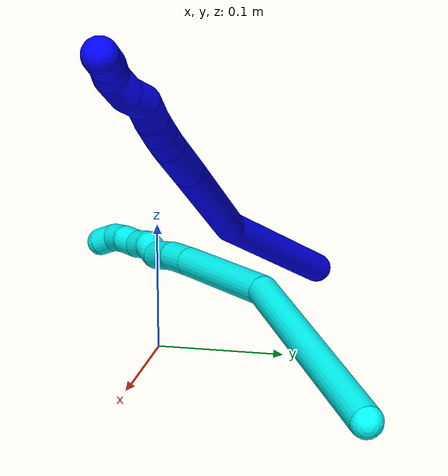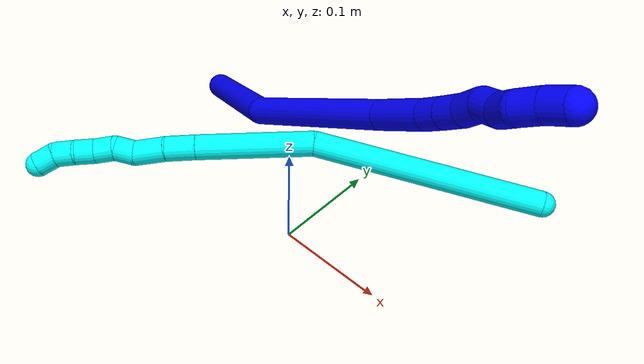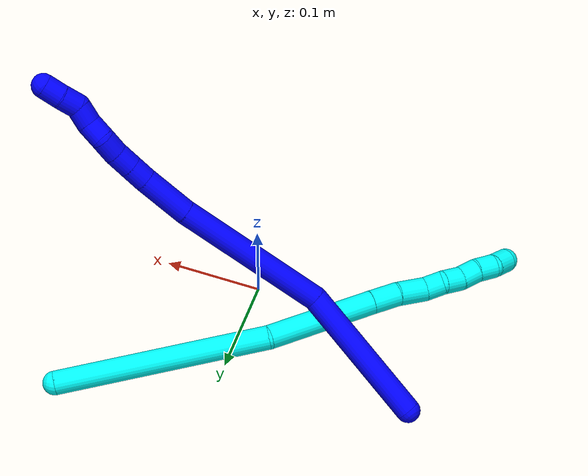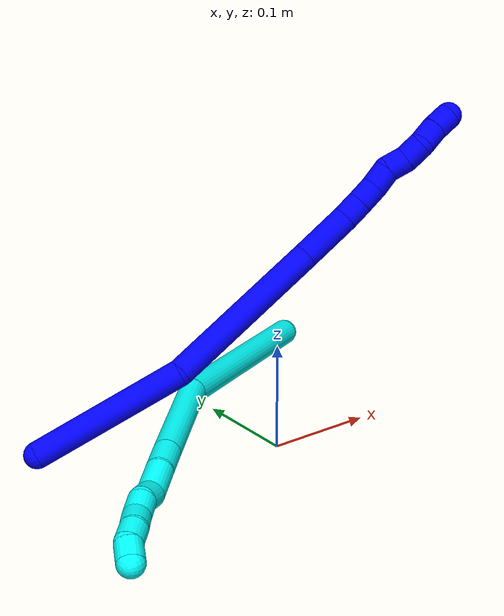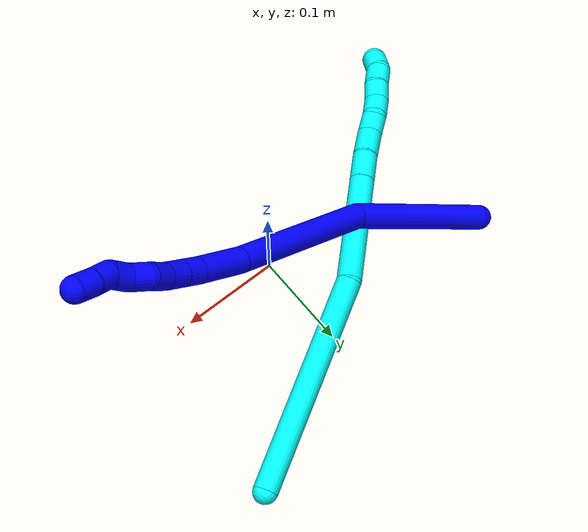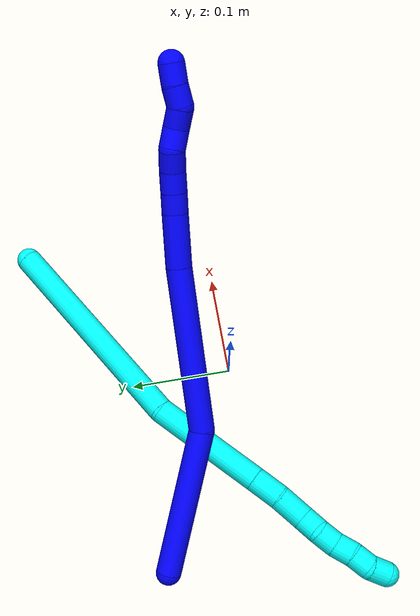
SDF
<sdf version="1.7">
 <world name="default">
  <model name="1">
   <static>0</static>
   <link name="1">
    <collision name="collision-cylinder-e_1_1_4">
     <pose>0.018158 0.00442 -0.071099 -3.0795 0.249581 -2.65622</pose>
     <geometry><cylinder><radius>0.0125</radius><length>0.147027</length></cylinder></geometry>
     <surface>
      <friction><ode><mu>1.16</mu><mu2>1.16</mu2><slip1>0</slip1><slip2>0</slip2></ode></friction>
      <contact><ode><kp>1e+06</kp><kd>1</kd><max_vel>0</max_vel><min_depth>0.001</min_depth></ode></contact>
     </surface>
    </collision>
    <visual name="visual-cylinder-e_1_1_4">
     <pose>0.018158 0.00442 -0.071099 -3.0795 0.249581 -2.65622</pose>
     <geometry><cylinder><radius>0.0125</radius><length>0.147027</length></cylinder></geometry>
     <material><ambient>0 0 1 1</ambient></material>
    </visual>
    <collision name="collision-cylinder-e_2_4_5">
     <pose>0.070811 0.035906 -0.209322 -2.75832 0.44477 -1.72334</pose>
     <geometry><cylinder><radius>0.0125</radius><length>0.160352</length></cylinder></geometry>
     <surface>
      <friction><ode><mu>1.16</mu><mu2>1.16</mu2><slip1>0</slip1><slip2>0</slip2></ode></friction>
      <contact><ode><kp>1e+06</kp><kd>1</kd><max_vel>0</max_vel><min_depth>0.001</min_depth></ode></contact>
     </surface>
    </collision>
    <visual name="visual-cylinder-e_2_4_5">
     <pose>0.070811 0.035906 -0.209322 -2.75832 0.44477 -1.72334</pose>
     <geometry><cylinder><radius>0.0125</radius><length>0.160352</length></cylinder></geometry>
     <material><ambient>0 0 1 1</ambient></material>
    </visual>
    <collision name="collision-cylinder-e_3_5_6">
     <pose>0.116974 0.069454 -0.298623 -2.85721 0.467624 -2.05918</pose>
     <geometry><cylinder><radius>0.0125</radius><length>0.051765</length></cylinder></geometry>
     <surface>
      <friction><ode><mu>1.16</mu><mu2>1.16</mu2><slip1>0</slip1><slip2>0</slip2></ode></friction>
      <contact><ode><kp>1e+06</kp><kd>1</kd><max_vel>0</max_vel><min_depth>0.001</min_depth></ode></contact>
     </surface>
    </collision>
    <visual name="visual-cylinder-e_3_5_6">
     <pose>0.116974 0.069454 -0.298623 -2.85721 0.467624 -2.05918</pose>
     <geometry><cylinder><radius>0.0125</radius><length>0.051765</length></cylinder></geometry>
     <material><ambient>0 0 1 1</ambient></material>
    </visual>
    <collision name="collision-cylinder-e_4_6_7">
     <pose>0.13366 0.077933 -0.32925 -2.90949 0.52403 -2.32148</pose>
     <geometry><cylinder><radius>0.0125</radius><length>0.02006</length></cylinder></geometry>
     <surface>
      <friction><ode><mu>1.16</mu><mu2>1.16</mu2><slip1>0</slip1><slip2>0</slip2></ode></friction>
      <contact><ode><kp>1e+06</kp><kd>1</kd><max_vel>0</max_vel><min_depth>0.001</min_depth></ode></contact>
     </surface>
    </collision>
    <visual name="visual-cylinder-e_4_6_7">
     <pose>0.13366 0.077933 -0.32925 -2.90949 0.52403 -2.32148</pose>
     <geometry><cylinder><radius>0.0125</radius><length>0.02006</length></cylinder></geometry>
     <material><ambient>0 0 1 1</ambient></material>
    </visual>
    <collision name="collision-cylinder-e_5_7_8">
     <pose>0.143985 0.081951 -0.346217 -2.90873 0.545023 -2.34887</pose>
     <geometry><cylinder><radius>0.0125</radius><length>0.020471</length></cylinder></geometry>
     <surface>
      <friction><ode><mu>1.16</mu><mu2>1.16</mu2><slip1>0</slip1><slip2>0</slip2></ode></friction>
      <contact><ode><kp>1e+06</kp><kd>1</kd><max_vel>0</max_vel><min_depth>0.001</min_depth></ode></contact>
     </surface>
    </collision>
    <visual name="visual-cylinder-e_5_7_8">
     <pose>0.143985 0.081951 -0.346217 -2.90873 0.545023 -2.34887</pose>
     <geometry><cylinder><radius>0.0125</radius><length>0.020471</length></cylinder></geometry>
     <material><ambient>0 0 1 1</ambient></material>
    </visual>
    <collision name="collision-cylinder-e_6_8_9">
     <pose>0.155477 0.084769 -0.362728 -3.04203 0.656064 -2.85087</pose>
     <geometry><cylinder><radius>0.0125</radius><length>0.020281</length></cylinder></geometry>
     <surface>
      <friction><ode><mu>1.16</mu><mu2>1.16</mu2><slip1>0</slip1><slip2>0</slip2></ode></friction>
      <contact><ode><kp>1e+06</kp><kd>1</kd><max_vel>0</max_vel><min_depth>0.001</min_depth></ode></contact>
     </surface>
    </collision>
    <visual name="visual-cylinder-e_6_8_9">
     <pose>0.155477 0.084769 -0.362728 -3.04203 0.656064 -2.85087</pose>
     <geometry><cylinder><radius>0.0125</radius><length>0.020281</length></cylinder></geometry>
     <material><ambient>0 0 1 1</ambient></material>
    </visual>
    <collision name="collision-cylinder-e_7_9_10">
     <pose>0.163961 0.08657 -0.380411 -3.03847 0.231802 -2.30714</pose>
     <geometry><cylinder><radius>0.0125</radius><length>0.020012</length></cylinder></geometry>
     <surface>
      <friction><ode><mu>1.16</mu><mu2>1.16</mu2><slip1>0</slip1><slip2>0</slip2></ode></friction>
      <contact><ode><kp>1e+06</kp><kd>1</kd><max_vel>0</max_vel><min_depth>0.001</min_depth></ode></contact>
     </surface>
    </collision>
    <visual name="visual-cylinder-e_7_9_10">
     <pose>0.163961 0.08657 -0.380411 -3.03847 0.231802 -2.30714</pose>
     <geometry><cylinder><radius>0.0125</radius><length>0.020012</length></cylinder></geometry>
     <material><ambient>0 0 1 1</ambient></material>
    </visual>
    <collision name="collision-cylinder-e_8_10_11">
     <pose>0.170962 0.08686 -0.398905 3.0609 0.489051 2.82079</pose>
     <geometry><cylinder><radius>0.0125</radius><length>0.02002</length></cylinder></geometry>
     <surface>
      <friction><ode><mu>1.16</mu><mu2>1.16</mu2><slip1>0</slip1><slip2>0</slip2></ode></friction>
      <contact><ode><kp>1e+06</kp><kd>1</kd><max_vel>0</max_vel><min_depth>0.001</min_depth></ode></contact>
     </surface>
    </collision>
    <visual name="visual-cylinder-e_8_10_11">
     <pose>0.170962 0.08686 -0.398905 3.0609 0.489051 2.82079</pose>
     <geometry><cylinder><radius>0.0125</radius><length>0.02002</length></cylinder></geometry>
     <material><ambient>0 0 1 1</ambient></material>
    </visual>
    <collision name="collision-cylinder-e_9_11_12">
     <pose>0.180885 0.090115 -0.415266 -2.65798 0.549087 -1.7032</pose>
     <geometry><cylinder><radius>0.0125</radius><length>0.020002</length></cylinder></geometry>
     <surface>
      <friction><ode><mu>1.16</mu><mu2>1.16</mu2><slip1>0</slip1><slip2>0</slip2></ode></friction>
      <contact><ode><kp>1e+06</kp><kd>1</kd><max_vel>0</max_vel><min_depth>0.001</min_depth></ode></contact>
     </surface>
    </collision>
    <visual name="visual-cylinder-e_9_11_12">
     <pose>0.180885 0.090115 -0.415266 -2.65798 0.549087 -1.7032</pose>
     <geometry><cylinder><radius>0.0125</radius><length>0.020002</length></cylinder></geometry>
     <material><ambient>0 0 1 1</ambient></material>
    </visual>
    <collision name="collision-cylinder-e_10_12_2">
     <pose>0.190354 0.097716 -0.431115 -2.72871 0.438682 -1.63324</pose>
     <geometry><cylinder><radius>0.0125</radius><length>0.02001</length></cylinder></geometry>
     <surface>
      <friction><ode><mu>1.16</mu><mu2>1.16</mu2><slip1>0</slip1><slip2>0</slip2></ode></friction>
      <contact><ode><kp>1e+06</kp><kd>1</kd><max_vel>0</max_vel><min_depth>0.001</min_depth></ode></contact>
     </surface>
    </collision>
    <visual name="visual-cylinder-e_10_12_2">
     <pose>0.190354 0.097716 -0.431115 -2.72871 0.438682 -1.63324</pose>
     <geometry><cylinder><radius>0.0125</radius><length>0.02001</length></cylinder></geometry>
     <material><ambient>0 0 1 1</ambient></material>
    </visual>
    <collision name="collision-sphere-2">
     <pose>0.194603 0.10135 -0.439411 0 -0 0</pose>
     <geometry><sphere><radius>0.0125</radius></sphere></geometry>
     <surface>
      <friction><ode><mu>1.16</mu><mu2>1.16</mu2><slip1>0</slip1><slip2>0</slip2></ode></friction>
      <contact><ode><kp>1e+06</kp><kd>1</kd><max_vel>0</max_vel><min_depth>0.001</min_depth></ode></contact>
     </surface>
    </collision>
    <visual name="visual-sphere-2">
     <pose>0.194603 0.10135 -0.439411 0 -0 0</pose>
     <geometry><sphere><radius>0.0125</radius></sphere></geometry>
     <material><ambient>0 0 1 1</ambient></material>
    </visual>
    <collision name="collision-sphere-12">
     <pose>0.186104 0.094081 -0.422818 0 -0 0</pose>
     <geometry><sphere><radius>0.0125</radius></sphere></geometry>
     <surface>
      <friction><ode><mu>1.16</mu><mu2>1.16</mu2><slip1>0</slip1><slip2>0</slip2></ode></friction>
      <contact><ode><kp>1e+06</kp><kd>1</kd><max_vel>0</max_vel><min_depth>0.001</min_depth></ode></contact>
     </surface>
    </collision>
    <visual name="visual-sphere-12">
     <pose>0.186104 0.094081 -0.422818 0 -0 0</pose>
     <geometry><sphere><radius>0.0125</radius></sphere></geometry>
     <material><ambient>0 0 1 1</ambient></material>
    </visual>
    <collision name="collision-sphere-11">
     <pose>0.175665 0.086148 -0.407713 0 -0 0</pose>
     <geometry><sphere><radius>0.0125</radius></sphere></geometry>
     <surface>
      <friction><ode><mu>1.16</mu><mu2>1.16</mu2><slip1>0</slip1><slip2>0</slip2></ode></friction>
      <contact><ode><kp>1e+06</kp><kd>1</kd><max_vel>0</max_vel><min_depth>0.001</min_depth></ode></contact>
     </surface>
    </collision>
    <visual name="visual-sphere-11">
     <pose>0.175665 0.086148 -0.407713 0 -0 0</pose>
     <geometry><sphere><radius>0.0125</radius></sphere></geometry>
     <material><ambient>0 0 1 1</ambient></material>
    </visual>
    <collision name="collision-sphere-10">
     <pose>0.16626 0.087573 -0.390098 0 -0 0</pose>
     <geometry><sphere><radius>0.0125</radius></sphere></geometry>
     <surface>
      <friction><ode><mu>1.16</mu><mu2>1.16</mu2><slip1>0</slip1><slip2>0</slip2></ode></friction>
      <contact><ode><kp>1e+06</kp><kd>1</kd><max_vel>0</max_vel><min_depth>0.001</min_depth></ode></contact>
     </surface>
    </collision>
    <visual name="visual-sphere-10">
     <pose>0.16626 0.087573 -0.390098 0 -0 0</pose>
     <geometry><sphere><radius>0.0125</radius></sphere></geometry>
     <material><ambient>0 0 1 1</ambient></material>
    </visual>
    <collision name="collision-sphere-9">
     <pose>0.161662 0.085568 -0.370724 0 -0 0</pose>
     <geometry><sphere><radius>0.0125</radius></sphere></geometry>
     <surface>
      <friction><ode><mu>1.16</mu><mu2>1.16</mu2><slip1>0</slip1><slip2>0</slip2></ode></friction>
      <contact><ode><kp>1e+06</kp><kd>1</kd><max_vel>0</max_vel><min_depth>0.001</min_depth></ode></contact>
     </surface>
    </collision>
    <visual name="visual-sphere-9">
     <pose>0.161662 0.085568 -0.370724 0 -0 0</pose>
     <geometry><sphere><radius>0.0125</radius></sphere></geometry>
     <material><ambient>0 0 1 1</ambient></material>
    </visual>
    <collision name="collision-sphere-4">
     <pose>0.036315 0.008841 -0.142197 0 -0 0</pose>
     <geometry><sphere><radius>0.0125</radius></sphere></geometry>
     <surface>
      <friction><ode><mu>1.16</mu><mu2>1.16</mu2><slip1>0</slip1><slip2>0</slip2></ode></friction>
      <contact><ode><kp>1e+06</kp><kd>1</kd><max_vel>0</max_vel><min_depth>0.001</min_depth></ode></contact>
     </surface>
    </collision>
    <visual name="visual-sphere-4">
     <pose>0.036315 0.008841 -0.142197 0 -0 0</pose>
     <geometry><sphere><radius>0.0125</radius></sphere></geometry>
     <material><ambient>0 0 1 1</ambient></material>
    </visual>
    <collision name="collision-sphere-1">
     <geometry><sphere><radius>0.0125</radius></sphere></geometry>
     <surface>
      <friction><ode><mu>1.16</mu><mu2>1.16</mu2><slip1>0</slip1><slip2>0</slip2></ode></friction>
      <contact><ode><kp>1e+06</kp><kd>1</kd><max_vel>0</max_vel><min_depth>0.001</min_depth></ode></contact>
     </surface>
    </collision>
    <visual name="visual-sphere-1">
     <geometry><sphere><radius>0.0125</radius></sphere></geometry>
     <material><ambient>0 0 1 1</ambient></material>
    </visual>
    <collision name="collision-sphere-8">
     <pose>0.149291 0.08397 -0.354733 0 -0 0</pose>
     <geometry><sphere><radius>0.0125</radius></sphere></geometry>
     <surface>
      <friction><ode><mu>1.16</mu><mu2>1.16</mu2><slip1>0</slip1><slip2>0</slip2></ode></friction>
      <contact><ode><kp>1e+06</kp><kd>1</kd><max_vel>0</max_vel><min_depth>0.001</min_depth></ode></contact>
     </surface>
    </collision>
    <visual name="visual-sphere-8">
     <pose>0.149291 0.08397 -0.354733 0 -0 0</pose>
     <geometry><sphere><radius>0.0125</radius></sphere></geometry>
     <material><ambient>0 0 1 1</ambient></material>
    </visual>
    <collision name="collision-sphere-5">
     <pose>0.105307 0.062972 -0.276447 0 -0 0</pose>
     <geometry><sphere><radius>0.0125</radius></sphere></geometry>
     <surface>
      <friction><ode><mu>1.16</mu><mu2>1.16</mu2><slip1>0</slip1><slip2>0</slip2></ode></friction>
      <contact><ode><kp>1e+06</kp><kd>1</kd><max_vel>0</max_vel><min_depth>0.001</min_depth></ode></contact>
     </surface>
    </collision>
    <visual name="visual-sphere-5">
     <pose>0.105307 0.062972 -0.276447 0 -0 0</pose>
     <geometry><sphere><radius>0.0125</radius></sphere></geometry>
     <material><ambient>0 0 1 1</ambient></material>
    </visual>
    <collision name="collision-sphere-6">
     <pose>0.128641 0.075936 -0.320799 0 -0 0</pose>
     <geometry><sphere><radius>0.0125</radius></sphere></geometry>
     <surface>
      <friction><ode><mu>1.16</mu><mu2>1.16</mu2><slip1>0</slip1><slip2>0</slip2></ode></friction>
      <contact><ode><kp>1e+06</kp><kd>1</kd><max_vel>0</max_vel><min_depth>0.001</min_depth></ode></contact>
     </surface>
    </collision>
    <visual name="visual-sphere-6">
     <pose>0.128641 0.075936 -0.320799 0 -0 0</pose>
     <geometry><sphere><radius>0.0125</radius></sphere></geometry>
     <material><ambient>0 0 1 1</ambient></material>
    </visual>
    <collision name="collision-sphere-7">
     <pose>0.138678 0.079931 -0.337701 0 -0 0</pose>
     <geometry><sphere><radius>0.0125</radius></sphere></geometry>
     <surface>
      <friction><ode><mu>1.16</mu><mu2>1.16</mu2><slip1>0</slip1><slip2>0</slip2></ode></friction>
      <contact><ode><kp>1e+06</kp><kd>1</kd><max_vel>0</max_vel><min_depth>0.001</min_depth></ode></contact>
     </surface>
    </collision>
    <visual name="visual-sphere-7">
     <pose>0.138678 0.079931 -0.337701 0 -0 0</pose>
     <geometry><sphere><radius>0.0125</radius></sphere></geometry>
     <material><ambient>0 0 1 1</ambient></material>
    </visual>
    <inertial>
     <pose>0.085985 0.044384 -0.226114 0 -0 0</pose>
     <mass>0.5</mass>
     <inertia>
      <ixx>-0.000726</ixx>
      <ixy>0</ixy>
      <ixz>0</ixz>
      <iyy>-8.2e-05</iyy>
      <iyz>0</iyz>
      <izz>-0.000402</izz>
     </inertia>
    </inertial>
   </link>
   <pose>-0.195738 0.095886 0.011513 -2.25033 -1.13076 1.61521</pose>
  </model>
  <model name="3">
   <static>0</static>
   <link name="3">
    <collision name="collision-cylinder-e_1_1_4">
     <pose>-0.023825 -0.028601 0.104897 0.266188 -0.215723 -0.028993</pose>
     <geometry><cylinder><radius>0.0125</radius><length>0.222612</length></cylinder></geometry>
     <surface>
      <friction><ode><mu>1.16</mu><mu2>1.16</mu2><slip1>0</slip1><slip2>0</slip2></ode></friction>
      <contact><ode><kp>1e+06</kp><kd>1</kd><max_vel>0</max_vel><min_depth>0.001</min_depth></ode></contact>
     </surface>
    </collision>
    <visual name="visual-cylinder-e_1_1_4">
     <pose>-0.023825 -0.028601 0.104897 0.266188 -0.215723 -0.028993</pose>
     <geometry><cylinder><radius>0.0125</radius><length>0.222612</length></cylinder></geometry>
     <material><ambient>0.003922 1 0.996078 1</ambient></material>
    </visual>
    <collision name="collision-cylinder-e_2_4_5">
     <pose>-0.075436 -0.066388 0.259339 0.183319 -0.503923 -0.047316</pose>
     <geometry><cylinder><radius>0.0125</radius><length>0.115085</length></cylinder></geometry>
     <surface>
      <friction><ode><mu>1.16</mu><mu2>1.16</mu2><slip1>0</slip1><slip2>0</slip2></ode></friction>
      <contact><ode><kp>1e+06</kp><kd>1</kd><max_vel>0</max_vel><min_depth>0.001</min_depth></ode></contact>
     </surface>
    </collision>
    <visual name="visual-cylinder-e_2_4_5">
     <pose>-0.075436 -0.066388 0.259339 0.183319 -0.503923 -0.047316</pose>
     <geometry><cylinder><radius>0.0125</radius><length>0.115085</length></cylinder></geometry>
     <material><ambient>0.003922 1 0.996078 1</ambient></material>
    </visual>
    <collision name="collision-cylinder-e_3_5_6">
     <pose>-0.110503 -0.07754 0.321696 0.152297 -0.511862 -0.039923</pose>
     <geometry><cylinder><radius>0.0125</radius><length>0.029734</length></cylinder></geometry>
     <surface>
      <friction><ode><mu>1.16</mu><mu2>1.16</mu2><slip1>0</slip1><slip2>0</slip2></ode></friction>
      <contact><ode><kp>1e+06</kp><kd>1</kd><max_vel>0</max_vel><min_depth>0.001</min_depth></ode></contact>
     </surface>
    </collision>
    <visual name="visual-cylinder-e_3_5_6">
     <pose>-0.110503 -0.07754 0.321696 0.152297 -0.511862 -0.039923</pose>
     <geometry><cylinder><radius>0.0125</radius><length>0.029734</length></cylinder></geometry>
     <material><ambient>0.003922 1 0.996078 1</ambient></material>
    </visual>
    <collision name="collision-cylinder-e_4_6_7">
     <pose>-0.125544 -0.079037 0.348452 -0.033628 -0.50748 0.008721</pose>
     <geometry><cylinder><radius>0.0125</radius><length>0.03193</length></cylinder></geometry>
     <surface>
      <friction><ode><mu>1.16</mu><mu2>1.16</mu2><slip1>0</slip1><slip2>0</slip2></ode></friction>
      <contact><ode><kp>1e+06</kp><kd>1</kd><max_vel>0</max_vel><min_depth>0.001</min_depth></ode></contact>
     </surface>
    </collision>
    <visual name="visual-cylinder-e_4_6_7">
     <pose>-0.125544 -0.079037 0.348452 -0.033628 -0.50748 0.008721</pose>
     <geometry><cylinder><radius>0.0125</radius><length>0.03193</length></cylinder></geometry>
     <material><ambient>0.003922 1 0.996078 1</ambient></material>
    </visual>
    <collision name="collision-cylinder-e_5_7_8">
     <pose>-0.136125 -0.082258 0.37134 0.391404 -0.283906 -0.056647</pose>
     <geometry><cylinder><radius>0.0125</radius><length>0.020154</length></cylinder></geometry>
     <surface>
      <friction><ode><mu>1.16</mu><mu2>1.16</mu2><slip1>0</slip1><slip2>0</slip2></ode></friction>
      <contact><ode><kp>1e+06</kp><kd>1</kd><max_vel>0</max_vel><min_depth>0.001</min_depth></ode></contact>
     </surface>
    </collision>
    <visual name="visual-cylinder-e_5_7_8">
     <pose>-0.136125 -0.082258 0.37134 0.391404 -0.283906 -0.056647</pose>
     <geometry><cylinder><radius>0.0125</radius><length>0.020154</length></cylinder></geometry>
     <material><ambient>0.003922 1 0.996078 1</ambient></material>
    </visual>
    <collision name="collision-cylinder-e_6_8_9">
     <pose>-0.14423 -0.085929 0.389042 -0.002283 -0.54265 0.000635</pose>
     <geometry><cylinder><radius>0.0125</radius><length>0.020458</length></cylinder></geometry>
     <surface>
      <friction><ode><mu>1.16</mu><mu2>1.16</mu2><slip1>0</slip1><slip2>0</slip2></ode></friction>
      <contact><ode><kp>1e+06</kp><kd>1</kd><max_vel>0</max_vel><min_depth>0.001</min_depth></ode></contact>
     </surface>
    </collision>
    <visual name="visual-cylinder-e_6_8_9">
     <pose>-0.14423 -0.085929 0.389042 -0.002283 -0.54265 0.000635</pose>
     <geometry><cylinder><radius>0.0125</radius><length>0.020458</length></cylinder></geometry>
     <material><ambient>0.003922 1 0.996078 1</ambient></material>
    </visual>
    <collision name="collision-cylinder-e_7_9_10">
     <pose>-0.155085 -0.088318 0.405755 0.294128 -0.590638 -0.090068</pose>
     <geometry><cylinder><radius>0.0125</radius><length>0.020012</length></cylinder></geometry>
     <surface>
      <friction><ode><mu>1.16</mu><mu2>1.16</mu2><slip1>0</slip1><slip2>0</slip2></ode></friction>
      <contact><ode><kp>1e+06</kp><kd>1</kd><max_vel>0</max_vel><min_depth>0.001</min_depth></ode></contact>
     </surface>
    </collision>
    <visual name="visual-cylinder-e_7_9_10">
     <pose>-0.155085 -0.088318 0.405755 0.294128 -0.590638 -0.090068</pose>
     <geometry><cylinder><radius>0.0125</radius><length>0.020012</length></cylinder></geometry>
     <material><ambient>0.003922 1 0.996078 1</ambient></material>
    </visual>
    <collision name="collision-cylinder-e_8_10_11">
     <pose>-0.165684 -0.091252 0.42234 0.060703 -0.526577 -0.016367</pose>
     <geometry><cylinder><radius>0.0125</radius><length>0.020003</length></cylinder></geometry>
     <surface>
      <friction><ode><mu>1.16</mu><mu2>1.16</mu2><slip1>0</slip1><slip2>0</slip2></ode></friction>
      <contact><ode><kp>1e+06</kp><kd>1</kd><max_vel>0</max_vel><min_depth>0.001</min_depth></ode></contact>
     </surface>
    </collision>
    <visual name="visual-cylinder-e_8_10_11">
     <pose>-0.165684 -0.091252 0.42234 0.060703 -0.526577 -0.016367</pose>
     <geometry><cylinder><radius>0.0125</radius><length>0.020003</length></cylinder></geometry>
     <material><ambient>0.003922 1 0.996078 1</ambient></material>
    </visual>
    <collision name="collision-cylinder-e_9_11_2">
     <pose>-0.178439 -0.090569 0.43721 -0.191114 -0.882616 0.090492</pose>
     <geometry><cylinder><radius>0.0125</radius><length>0.020012</length></cylinder></geometry>
     <surface>
      <friction><ode><mu>1.16</mu><mu2>1.16</mu2><slip1>0</slip1><slip2>0</slip2></ode></friction>
      <contact><ode><kp>1e+06</kp><kd>1</kd><max_vel>0</max_vel><min_depth>0.001</min_depth></ode></contact>
     </surface>
    </collision>
    <visual name="visual-cylinder-e_9_11_2">
     <pose>-0.178439 -0.090569 0.43721 -0.191114 -0.882616 0.090492</pose>
     <geometry><cylinder><radius>0.0125</radius><length>0.020012</length></cylinder></geometry>
     <material><ambient>0.003922 1 0.996078 1</ambient></material>
    </visual>
    <collision name="collision-sphere-2">
     <pose>-0.186167 -0.089362 0.443449 0 -0 0</pose>
     <geometry><sphere><radius>0.0125</radius></sphere></geometry>
     <surface>
      <friction><ode><mu>1.16</mu><mu2>1.16</mu2><slip1>0</slip1><slip2>0</slip2></ode></friction>
      <contact><ode><kp>1e+06</kp><kd>1</kd><max_vel>0</max_vel><min_depth>0.001</min_depth></ode></contact>
     </surface>
    </collision>
    <visual name="visual-sphere-2">
     <pose>-0.186167 -0.089362 0.443449 0 -0 0</pose>
     <geometry><sphere><radius>0.0125</radius></sphere></geometry>
     <material><ambient>0.003922 1 0.996078 1</ambient></material>
    </visual>
    <collision name="collision-sphere-11">
     <pose>-0.17071 -0.091777 0.43097 0 -0 0</pose>
     <geometry><sphere><radius>0.0125</radius></sphere></geometry>
     <surface>
      <friction><ode><mu>1.16</mu><mu2>1.16</mu2><slip1>0</slip1><slip2>0</slip2></ode></friction>
      <contact><ode><kp>1e+06</kp><kd>1</kd><max_vel>0</max_vel><min_depth>0.001</min_depth></ode></contact>
     </surface>
    </collision>
    <visual name="visual-sphere-11">
     <pose>-0.17071 -0.091777 0.43097 0 -0 0</pose>
     <geometry><sphere><radius>0.0125</radius></sphere></geometry>
     <material><ambient>0.003922 1 0.996078 1</ambient></material>
    </visual>
    <collision name="collision-sphere-10">
     <pose>-0.160657 -0.090728 0.413709 0 -0 0</pose>
     <geometry><sphere><radius>0.0125</radius></sphere></geometry>
     <surface>
      <friction><ode><mu>1.16</mu><mu2>1.16</mu2><slip1>0</slip1><slip2>0</slip2></ode></friction>
      <contact><ode><kp>1e+06</kp><kd>1</kd><max_vel>0</max_vel><min_depth>0.001</min_depth></ode></contact>
     </surface>
    </collision>
    <visual name="visual-sphere-10">
     <pose>-0.160657 -0.090728 0.413709 0 -0 0</pose>
     <geometry><sphere><radius>0.0125</radius></sphere></geometry>
     <material><ambient>0.003922 1 0.996078 1</ambient></material>
    </visual>
    <collision name="collision-sphere-9">
     <pose>-0.149513 -0.085909 0.397801 0 -0 0</pose>
     <geometry><sphere><radius>0.0125</radius></sphere></geometry>
     <surface>
      <friction><ode><mu>1.16</mu><mu2>1.16</mu2><slip1>0</slip1><slip2>0</slip2></ode></friction>
      <contact><ode><kp>1e+06</kp><kd>1</kd><max_vel>0</max_vel><min_depth>0.001</min_depth></ode></contact>
     </surface>
    </collision>
    <visual name="visual-sphere-9">
     <pose>-0.149513 -0.085909 0.397801 0 -0 0</pose>
     <geometry><sphere><radius>0.0125</radius></sphere></geometry>
     <material><ambient>0.003922 1 0.996078 1</ambient></material>
    </visual>
    <collision name="collision-sphere-4">
     <pose>-0.047651 -0.057202 0.209793 0 -0 0</pose>
     <geometry><sphere><radius>0.0125</radius></sphere></geometry>
     <surface>
      <friction><ode><mu>1.16</mu><mu2>1.16</mu2><slip1>0</slip1><slip2>0</slip2></ode></friction>
      <contact><ode><kp>1e+06</kp><kd>1</kd><max_vel>0</max_vel><min_depth>0.001</min_depth></ode></contact>
     </surface>
    </collision>
    <visual name="visual-sphere-4">
     <pose>-0.047651 -0.057202 0.209793 0 -0 0</pose>
     <geometry><sphere><radius>0.0125</radius></sphere></geometry>
     <material><ambient>0.003922 1 0.996078 1</ambient></material>
    </visual>
    <collision name="collision-sphere-1">
     <geometry><sphere><radius>0.0125</radius></sphere></geometry>
     <surface>
      <friction><ode><mu>1.16</mu><mu2>1.16</mu2><slip1>0</slip1><slip2>0</slip2></ode></friction>
      <contact><ode><kp>1e+06</kp><kd>1</kd><max_vel>0</max_vel><min_depth>0.001</min_depth></ode></contact>
     </surface>
    </collision>
    <visual name="visual-sphere-1">
     <geometry><sphere><radius>0.0125</radius></sphere></geometry>
     <material><ambient>0.003922 1 0.996078 1</ambient></material>
    </visual>
    <collision name="collision-sphere-8">
     <pose>-0.138948 -0.085949 0.380282 0 -0 0</pose>
     <geometry><sphere><radius>0.0125</radius></sphere></geometry>
     <surface>
      <friction><ode><mu>1.16</mu><mu2>1.16</mu2><slip1>0</slip1><slip2>0</slip2></ode></friction>
      <contact><ode><kp>1e+06</kp><kd>1</kd><max_vel>0</max_vel><min_depth>0.001</min_depth></ode></contact>
     </surface>
    </collision>
    <visual name="visual-sphere-8">
     <pose>-0.138948 -0.085949 0.380282 0 -0 0</pose>
     <geometry><sphere><radius>0.0125</radius></sphere></geometry>
     <material><ambient>0.003922 1 0.996078 1</ambient></material>
    </visual>
    <collision name="collision-sphere-5">
     <pose>-0.103221 -0.075574 0.308884 0 -0 0</pose>
     <geometry><sphere><radius>0.0125</radius></sphere></geometry>
     <surface>
      <friction><ode><mu>1.16</mu><mu2>1.16</mu2><slip1>0</slip1><slip2>0</slip2></ode></friction>
      <contact><ode><kp>1e+06</kp><kd>1</kd><max_vel>0</max_vel><min_depth>0.001</min_depth></ode></contact>
     </surface>
    </collision>
    <visual name="visual-sphere-5">
     <pose>-0.103221 -0.075574 0.308884 0 -0 0</pose>
     <geometry><sphere><radius>0.0125</radius></sphere></geometry>
     <material><ambient>0.003922 1 0.996078 1</ambient></material>
    </visual>
    <collision name="collision-sphere-6">
     <pose>-0.117785 -0.079506 0.334507 0 -0 0</pose>
     <geometry><sphere><radius>0.0125</radius></sphere></geometry>
     <surface>
      <friction><ode><mu>1.16</mu><mu2>1.16</mu2><slip1>0</slip1><slip2>0</slip2></ode></friction>
      <contact><ode><kp>1e+06</kp><kd>1</kd><max_vel>0</max_vel><min_depth>0.001</min_depth></ode></contact>
     </surface>
    </collision>
    <visual name="visual-sphere-6">
     <pose>-0.117785 -0.079506 0.334507 0 -0 0</pose>
     <geometry><sphere><radius>0.0125</radius></sphere></geometry>
     <material><ambient>0.003922 1 0.996078 1</ambient></material>
    </visual>
    <collision name="collision-sphere-7">
     <pose>-0.133302 -0.078568 0.362398 0 -0 0</pose>
     <geometry><sphere><radius>0.0125</radius></sphere></geometry>
     <surface>
      <friction><ode><mu>1.16</mu><mu2>1.16</mu2><slip1>0</slip1><slip2>0</slip2></ode></friction>
      <contact><ode><kp>1e+06</kp><kd>1</kd><max_vel>0</max_vel><min_depth>0.001</min_depth></ode></contact>
     </surface>
    </collision>
    <visual name="visual-sphere-7">
     <pose>-0.133302 -0.078568 0.362398 0 -0 0</pose>
     <geometry><sphere><radius>0.0125</radius></sphere></geometry>
     <material><ambient>0.003922 1 0.996078 1</ambient></material>
    </visual>
    <inertial>
     <pose>-0.073925 -0.055315 0.229298 0 -0 0</pose>
     <mass>0.5</mass>
     <inertia>
      <ixx>0.000987</ixx>
      <ixy>0</ixy>
      <ixz>0</ixz>
      <iyy>0.001002</iyy>
      <iyz>0</iyz>
      <izz>0.000565</izz>
     </inertia>
    </inertial>
   </link>
   <pose>0.152609 0.185378 0.011995 -1.63673 -0.310862 1.81767</pose>
  </model>
 </world>
</sdf>
